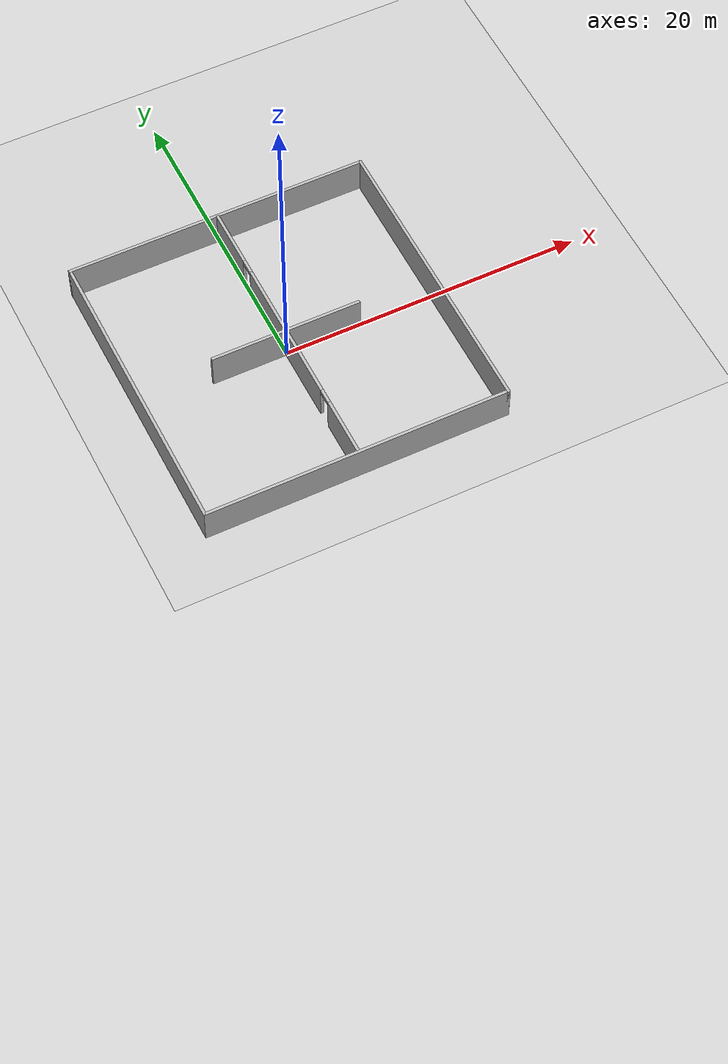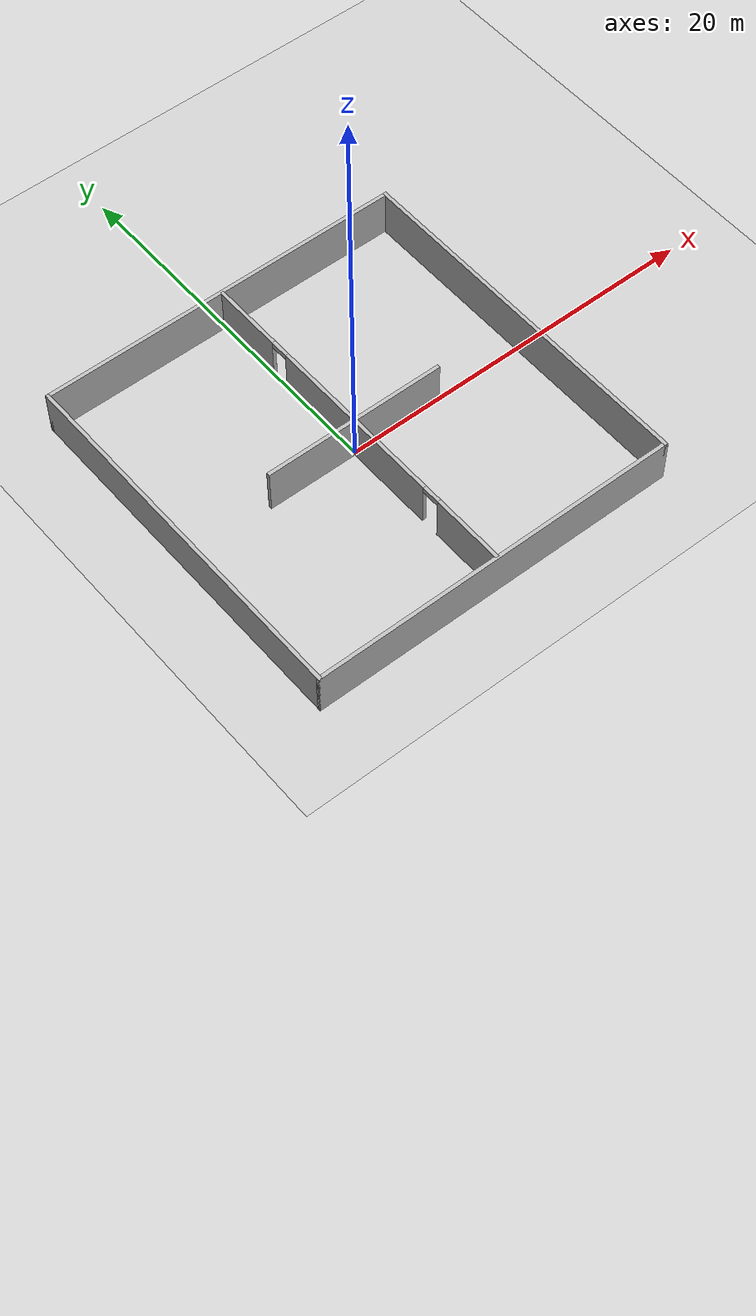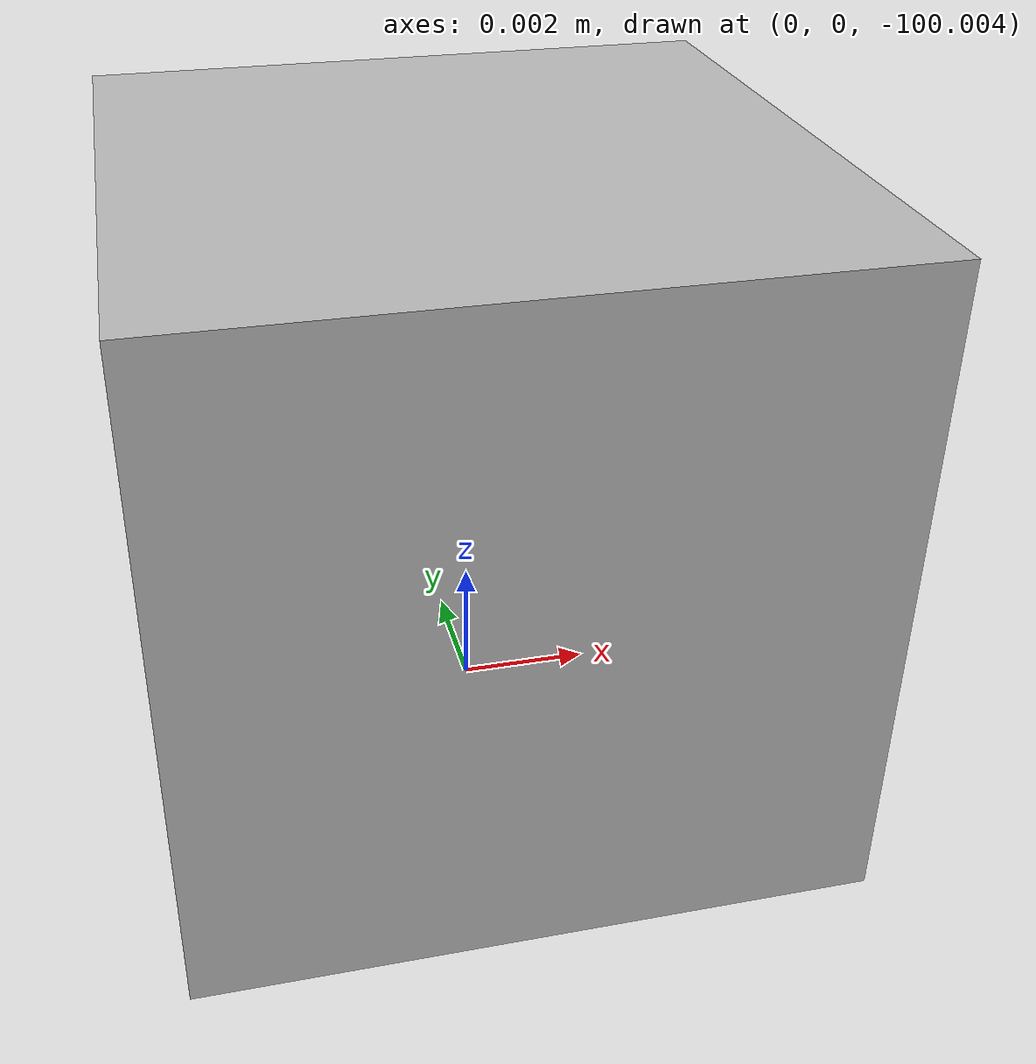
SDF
<sdf version="1.6">
 <world name="world">
  <plugin name="gazebo_ros_state" filename="libgazebo_ros_state.so">
   <ros>
    <namespace>/demo</namespace>
    <remapping>model_states:=model_states_demo</remapping>
    <remapping>link_states:=link_states_demo</remapping>
   </ros>
   <update_rate>1.0</update_rate>
  </plugin>
  <gravity>0 0 -9.8</gravity>
  <physics default="0" name="default_physics" type="ode">
   <max_step_size>0.001</max_step_size>
   <real_time_factor>1</real_time_factor>
   <real_time_update_rate>1000</real_time_update_rate>
  </physics>
  <scene><ambient>0.6 0.6 0.6 1</ambient><background>0.4 0.4 0.4 1</background><shadows>false</shadows></scene>
  <include><uri>model://sun</uri></include>
  <include><uri>model://ground_plane</uri><pose>0 0 -0.1 0 -0 0</pose></include>
  <model name="left_corridor_wall">
   <allow_auto_disable>false</allow_auto_disable>
   <static>true</static>
   <pose>10 0 1.2 0 0 0</pose>
   <static>true</static>
   <link name="left_corridor_wall_link">
    <collision name="left_corridor_wall_collision">
     <geometry><box><size>0.2 20.2 2.4</size></box></geometry>
    </collision>
    <visual name="left_corridor_wall_visual"><geometry><box><size>0.2 20.2 2.4</size></box></geometry></visual>
   </link>
  </model>
  <model name="right_corridor_wall">
   <allow_auto_disable>false</allow_auto_disable>
   <static>true</static>
   <pose>-10 0 1.2 0 0 0</pose>
   <static>true</static>
   <link name="right_corridor_wall_link">
    <collision name="right_corridor_wall_collision">
     <geometry><box><size>0.2 20.2 2.4</size></box></geometry>
    </collision>
    <visual name="right_corridor_wall_visual"><geometry><box><size>0.2 20.2 2.4</size></box></geometry></visual>
   </link>
  </model>
  <model name="upper_corridor_wall">
   <allow_auto_disable>false</allow_auto_disable>
   <static>true</static>
   <pose>0 -10 1.2 0 0 0</pose>
   <static>true</static>
   <link name="upper_corridor_wall_link">
    <collision name="upper_corridor_wall_collision">
     <geometry><box><size>20.2 0.2 2.4</size></box></geometry>
    </collision>
    <visual name="upper_corridor_wall_visual"><geometry><box><size>20.2 0.2 2.4</size></box></geometry></visual>
   </link>
  </model>
  <model name="bottom_corridor_wall">
   <allow_auto_disable>false</allow_auto_disable>
   <static>true</static>
   <pose>0 10 1.2 0 0 0</pose>
   <static>true</static>
   <link name="bottom_corridor_wall_link">
    <collision name="bottom_corridor_wall_collision">
     <geometry><box><size>20.2 0.2 2.4</size></box></geometry>
    </collision>
    <visual name="upper_corridor_wall_visual"><geometry><box><size>20.2 0.2 2.4</size></box></geometry></visual>
   </link>
  </model>
  <model name="central_wall_1">
   <allow_auto_disable>false</allow_auto_disable>
   <static>true</static>
   <pose>0 0 1.2 0 0 0</pose>
   <static>true</static>
   <link name="central_wall_1_link">
    <collision name="central_wall_1_collision"><geometry><box><size>10 0.2 2.4</size></box></geometry></collision>
    <visual name="central_wall_1_visual"><geometry><box><size>10 0.2 2.4</size></box></geometry></visual>
   </link>
  </model>
  <model name="central_wall_2">
   <allow_auto_disable>false</allow_auto_disable>
   <static>true</static>
   <pose>0 0 1.2 0 0 0</pose>
   <static>true</static>
   <link name="central_wall_2_link">
    <collision name="central_wall_2_collision"><geometry><box><size>0.2 10 2.4</size></box></geometry></collision>
    <visual name="central_wall_2_visual"><geometry><box><size>0.2 10 2.4</size></box></geometry></visual>
   </link>
  </model>
  <model name="architrave_south">
   <allow_auto_disable>false</allow_auto_disable>
   <static>true</static>
   <pose>0 5.5 2.25 0 0 0</pose>
   <static>true</static>
   <link name="architrave_south_link">
    <collision name="architrave_south_collision">
     <geometry><box><size>0.2 1 0.3</size></box></geometry>
    </collision>
    <visual name="architrave_south_visual"><geometry><box><size>0.2 1 0.3</size></box></geometry></visual>
   </link>
  </model>
  <model name="architrave_north">
   <allow_auto_disable>false</allow_auto_disable>
   <static>true</static>
   <pose>0 -5.5 2.25 0 0 0</pose>
   <static>true</static>
   <link name="architrave_north_link">
    <collision name="architrave_north_collision">
     <geometry><box><size>0.2 1 0.3</size></box></geometry>
    </collision>
    <visual name="architrave_north_visual"><geometry><box><size>0.2 1 0.3</size></box></geometry></visual>
   </link>
  </model>
  <model name="south_wall">
   <allow_auto_disable>false</allow_auto_disable>
   <static>true</static>
   <pose>0 8 1.2 0 0 0</pose>
   <static>true</static>
   <link name="south_wall_link">
    <collision name="south_wall_collision"><geometry><box><size>0.2 4 2.4</size></box></geometry></collision>
    <visual name="south_wall_visual"><geometry><box><size>0.2 4 2.4</size></box></geometry></visual>
   </link>
  </model>
  <model name="north_wall">
   <allow_auto_disable>false</allow_auto_disable>
   <static>true</static>
   <pose>0 -8 1.2 0 0 0</pose>
   <static>true</static>
   <link name="north_wall_link">
    <collision name="north_wall_collision"><geometry><box><size>0.2 4 2.4</size></box></geometry></collision>
    <visual name="north_wall_visual"><geometry><box><size>0.2 4 2.4</size></box></geometry></visual>
   </link>
  </model>
  <model name="actor1_collision_model">
   <allow_auto_disable>false</allow_auto_disable>
   <pose>0 0 -100 0 0 0</pose>
   <static>true</static>
   <link name="link">
    <collision name="link">
     <pose>0 -0.18 0.05 0 0 0</pose>
     <geometry><box><size>0.60 1.40 0.44</size></box></geometry>
    </collision>
    <visual name="link_visual">
     <pose>0 0 0 -1.5707 -1.5707 0</pose>
     <geometry><box><size>0.01 0.01 0.01</size></box></geometry>
     <plugin name="actor1_forces_visualization" filename="libVisualizeForcesPlugin.so">
      <node_name>Actor1Node_Visual</node_name>
      <topic_name>/forces/actor1</topic_name>
      <headed>true</headed>
     </plugin>
    </visual>
   </link>
  </model>
  <model name="actor2_collision_model">
   <allow_auto_disable>false</allow_auto_disable>
   <pose>0 0 -100 0 0 0</pose>
   <static>true</static>
   <link name="link">
    <collision name="link">
     <pose>0 -0.18 0.05 0 0 0</pose>
     <geometry><box><size>0.60 1.40 0.44</size></box></geometry>
    </collision>
    <visual name="link_visual">
     <pose>0 0 0 -1.5707 -1.5707 0</pose>
     <geometry><box><size>0.01 0.01 0.01</size></box></geometry>
     <plugin name="actor2_forces_visualization" filename="libVisualizeForcesPlugin.so">
      <node_name>Actor2Node_Visual</node_name>
      <topic_name>/forces/actor2</topic_name>
      <headed>true</headed>
     </plugin>
    </visual>
   </link>
  </model>
  <model name="actor3_collision_model">
   <allow_auto_disable>false</allow_auto_disable>
   <pose>0 0 -100 0 0 0</pose>
   <static>true</static>
   <link name="link">
    <collision name="link">
     <pose>0 -0.18 0.05 0 0 0</pose>
     <geometry><box><size>0.60 1.40 0.44</size></box></geometry>
    </collision>
    <visual name="link_visual">
     <pose>0 0 0 -1.5707 -1.5707 0</pose>
     <geometry><box><size>0.01 0.01 0.01</size></box></geometry>
     <plugin name="actor3_forces_visualization" filename="libVisualizeForcesPlugin.so">
      <node_name>Actor3Node_Visual</node_name>
      <topic_name>/forces/actor3</topic_name>
      <headed>true</headed>
     </plugin>
    </visual>
   </link>
  </model>
  <model name="actor4_collision_model">
   <allow_auto_disable>false</allow_auto_disable>
   <pose>0 0 -100 0 0 0</pose>
   <static>true</static>
   <link name="link">
    <collision name="link">
     <pose>0 -0.18 0.05 0 0 0</pose>
     <geometry><box><size>0.60 1.40 0.44</size></box></geometry>
    </collision>
    <visual name="link_visual">
     <pose>0 0 0 -1.5707 -1.5707 0</pose>
     <geometry><box><size>0.01 0.01 0.01</size></box></geometry>
     <plugin name="actor4_forces_visualization" filename="libVisualizeForcesPlugin.so">
      <node_name>Actor4Node_Visual</node_name>
      <topic_name>/forces/actor4</topic_name>
      <headed>true</headed>
     </plugin>
    </visual>
   </link>
  </model>
  <model name="actor5_collision_model">
   <allow_auto_disable>false</allow_auto_disable>
   <pose>0 0 -100 0 0 0</pose>
   <static>true</static>
   <link name="link">
    <collision name="link">
     <pose>0 -0.18 0.05 0 0 0</pose>
     <geometry><box><size>0.60 1.40 0.44</size></box></geometry>
    </collision>
    <visual name="link_visual">
     <pose>0 0 0 -1.5707 -1.5707 0</pose>
     <geometry><box><size>0.01 0.01 0.01</size></box></geometry>
     <plugin name="actor5_forces_visualization" filename="libVisualizeForcesPlugin.so">
      <node_name>Actor5Node_Visual</node_name>
      <topic_name>/forces/actor5</topic_name>
      <headed>true</headed>
     </plugin>
    </visual>
   </link>
  </model>
  <model name="actor6_collision_model">
   <allow_auto_disable>false</allow_auto_disable>
   <pose>0 0 -100 0 0 0</pose>
   <static>true</static>
   <link name="link">
    <collision name="link">
     <pose>0 -0.18 0.05 0 0 0</pose>
     <geometry><box><size>0.60 1.40 0.44</size></box></geometry>
    </collision>
    <visual name="link_visual">
     <pose>0 0 0 -1.5707 -1.5707 0</pose>
     <geometry><box><size>0.01 0.01 0.01</size></box></geometry>
     <plugin name="actor6_forces_visualization" filename="libVisualizeForcesPlugin.so">
      <node_name>Actor6Node_Visual</node_name>
      <topic_name>/forces/actor6</topic_name>
      <headed>true</headed>
     </plugin>
    </visual>
   </link>
  </model>
 </world>
</sdf>
